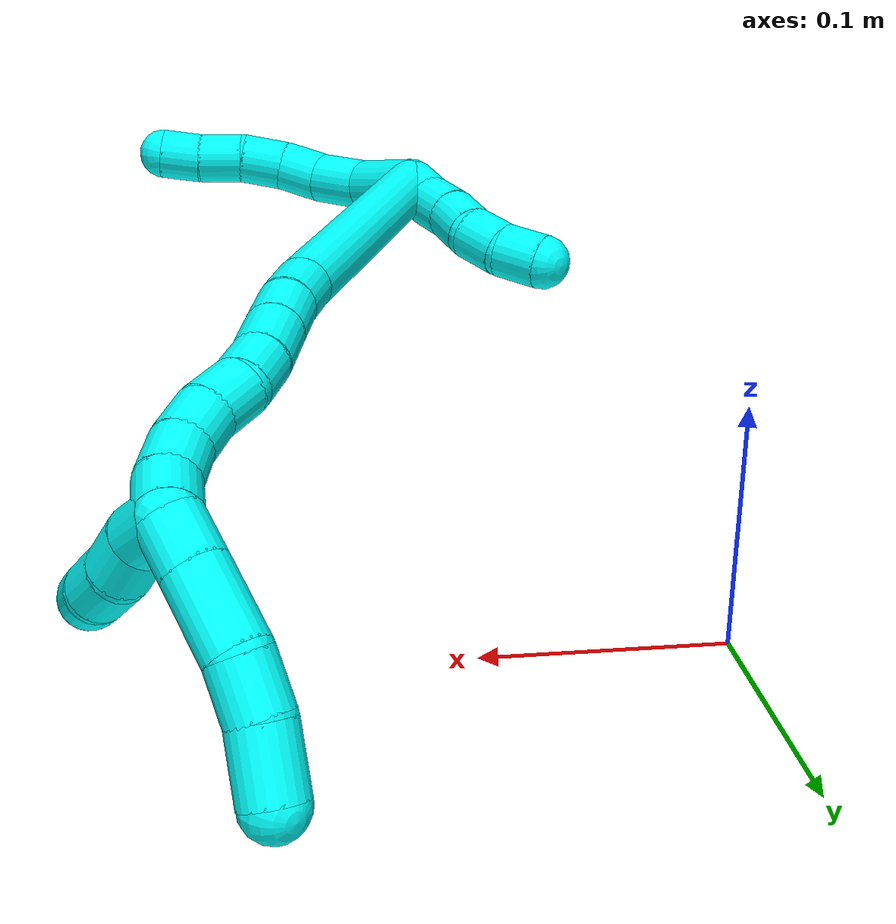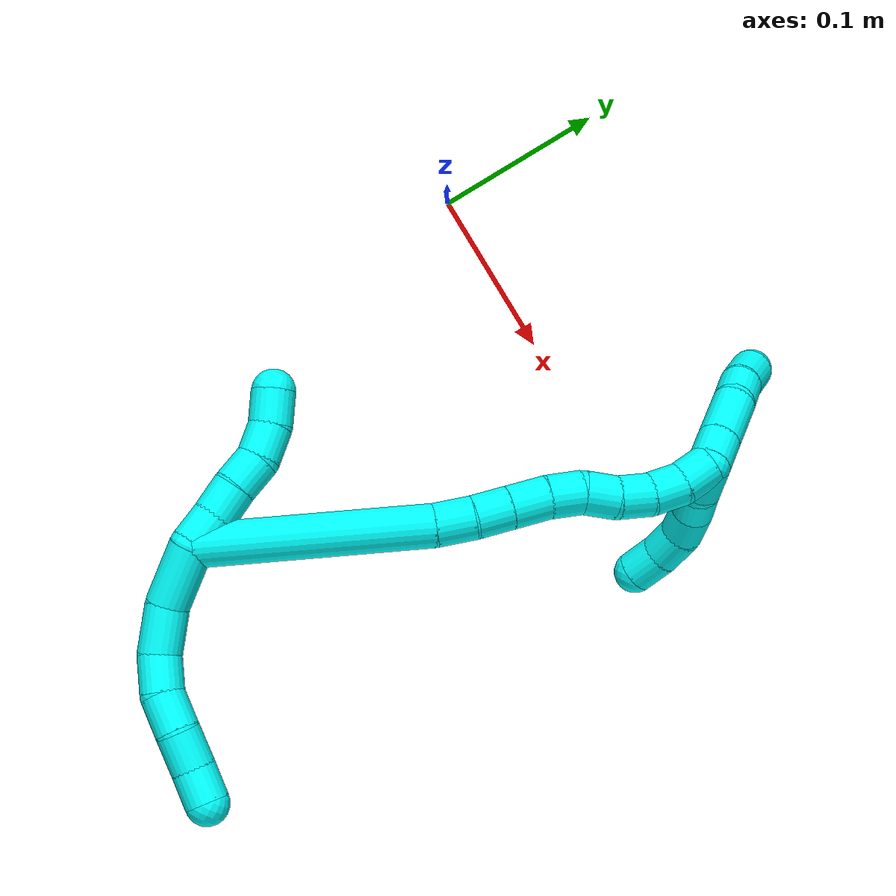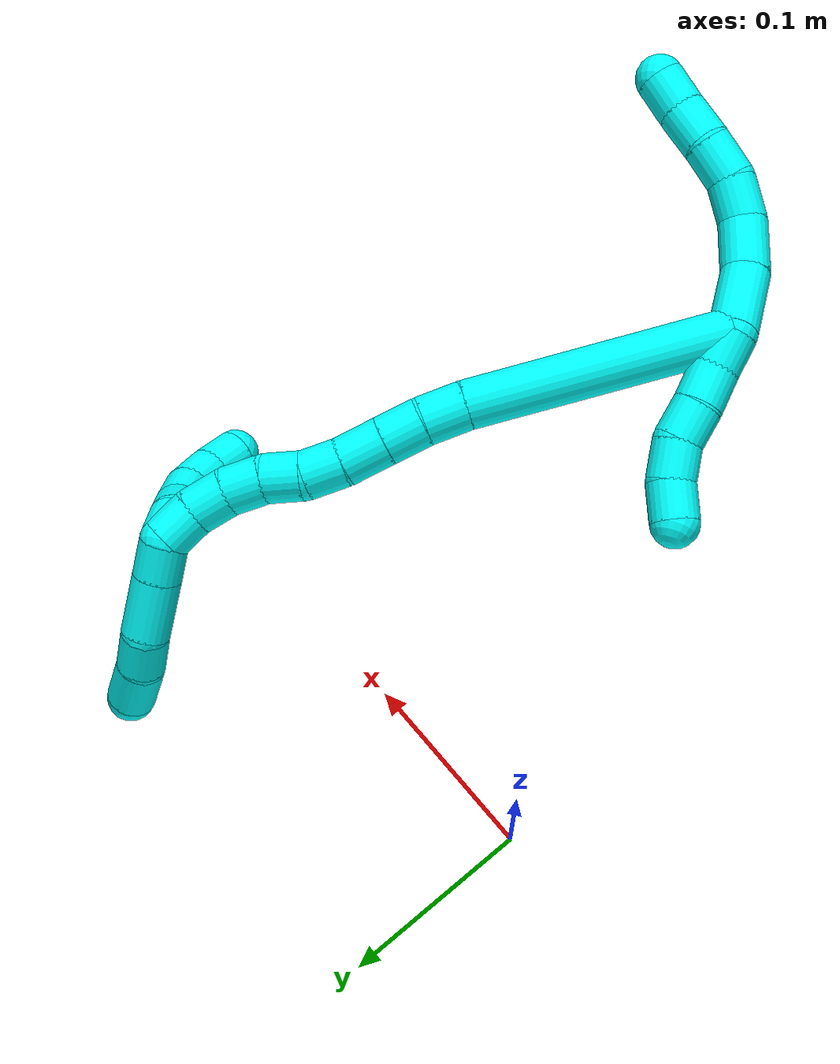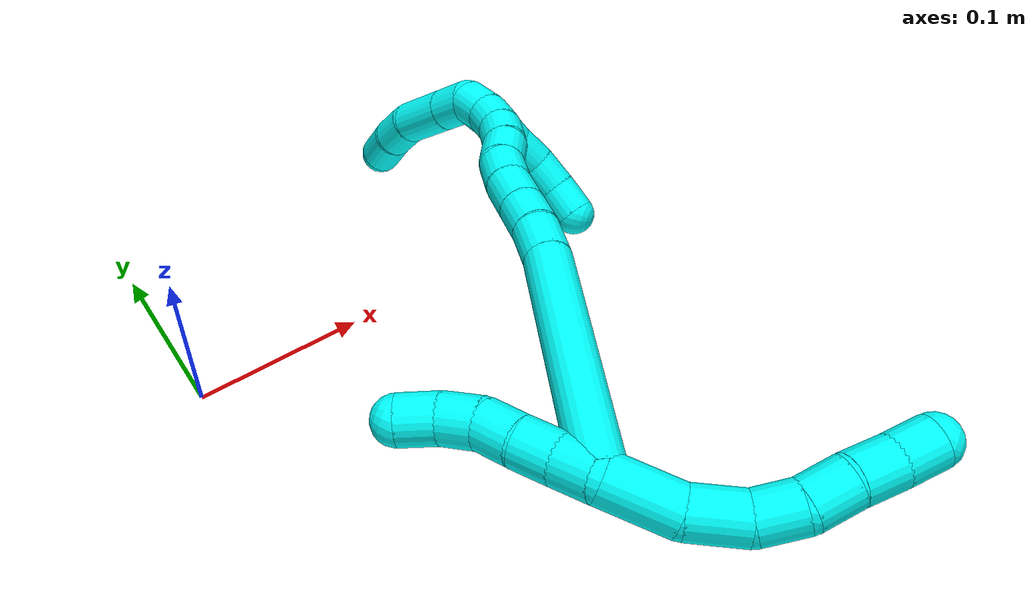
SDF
<sdf version="1.7">
 <world name="default">
  <model name="3">
   <static>0</static>
   <link name="3">
    <collision name="collision-cylinder-e_1_2_8">
     <pose>0.002812 0.000119 0.017757 -0.006686 0.157046 -0.000526</pose>
     <geometry><cylinder><radius>0.0125</radius><length>0.035956</length></cylinder></geometry>
     <surface>
      <friction><ode><mu>1.16</mu><mu2>1.16</mu2><slip1>0</slip1><slip2>0</slip2></ode></friction>
      <contact><ode><kp>1e+06</kp><kd>1</kd><max_vel>0</max_vel><min_depth>0.001</min_depth></ode></contact>
     </surface>
    </collision>
    <visual name="visual-cylinder-e_1_2_8">
     <pose>0.002812 0.000119 0.017757 -0.006686 0.157046 -0.000526</pose>
     <geometry><cylinder><radius>0.0125</radius><length>0.035956</length></cylinder></geometry>
     <material><ambient>0.003922 1 0.996078 1</ambient></material>
    </visual>
    <collision name="collision-cylinder-e_2_8_9">
     <pose>0.006608 0.004425 0.048792 -0.305448 0.070595 -0.010871</pose>
     <geometry><cylinder><radius>0.0125</radius><length>0.027917</length></cylinder></geometry>
     <surface>
      <friction><ode><mu>1.16</mu><mu2>1.16</mu2><slip1>0</slip1><slip2>0</slip2></ode></friction>
      <contact><ode><kp>1e+06</kp><kd>1</kd><max_vel>0</max_vel><min_depth>0.001</min_depth></ode></contact>
     </surface>
    </collision>
    <visual name="visual-cylinder-e_2_8_9">
     <pose>0.006608 0.004425 0.048792 -0.305448 0.070595 -0.010871</pose>
     <geometry><cylinder><radius>0.0125</radius><length>0.027917</length></cylinder></geometry>
     <material><ambient>0.003922 1 0.996078 1</ambient></material>
    </visual>
    <collision name="collision-cylinder-e_3_9_10">
     <pose>0.007096 0.014984 0.071002 -0.619796 -0.045229 0.014485</pose>
     <geometry><cylinder><radius>0.0125</radius><length>0.021964</length></cylinder></geometry>
     <surface>
      <friction><ode><mu>1.16</mu><mu2>1.16</mu2><slip1>0</slip1><slip2>0</slip2></ode></friction>
      <contact><ode><kp>1e+06</kp><kd>1</kd><max_vel>0</max_vel><min_depth>0.001</min_depth></ode></contact>
     </surface>
    </collision>
    <visual name="visual-cylinder-e_3_9_10">
     <pose>0.007096 0.014984 0.071002 -0.619796 -0.045229 0.014485</pose>
     <geometry><cylinder><radius>0.0125</radius><length>0.021964</length></cylinder></geometry>
     <material><ambient>0.003922 1 0.996078 1</ambient></material>
    </visual>
    <collision name="collision-cylinder-e_4_10_11">
     <pose>0.007579 0.029935 0.086789 -0.896455 0.088975 -0.042807</pose>
     <geometry><cylinder><radius>0.0125</radius><length>0.022051</length></cylinder></geometry>
     <surface>
      <friction><ode><mu>1.16</mu><mu2>1.16</mu2><slip1>0</slip1><slip2>0</slip2></ode></friction>
      <contact><ode><kp>1e+06</kp><kd>1</kd><max_vel>0</max_vel><min_depth>0.001</min_depth></ode></contact>
     </surface>
    </collision>
    <visual name="visual-cylinder-e_4_10_11">
     <pose>0.007579 0.029935 0.086789 -0.896455 0.088975 -0.042807</pose>
     <geometry><cylinder><radius>0.0125</radius><length>0.022051</length></cylinder></geometry>
     <material><ambient>0.003922 1 0.996078 1</ambient></material>
    </visual>
    <collision name="collision-cylinder-e_5_11_12">
     <pose>0.011474 0.046373 0.100775 -0.834056 0.268117 -0.119354</pose>
     <geometry><cylinder><radius>0.0125</radius><length>0.02201</length></cylinder></geometry>
     <surface>
      <friction><ode><mu>1.16</mu><mu2>1.16</mu2><slip1>0</slip1><slip2>0</slip2></ode></friction>
      <contact><ode><kp>1e+06</kp><kd>1</kd><max_vel>0</max_vel><min_depth>0.001</min_depth></ode></contact>
     </surface>
    </collision>
    <visual name="visual-cylinder-e_5_11_12">
     <pose>0.011474 0.046373 0.100775 -0.834056 0.268117 -0.119354</pose>
     <geometry><cylinder><radius>0.0125</radius><length>0.02201</length></cylinder></geometry>
     <material><ambient>0.003922 1 0.996078 1</ambient></material>
    </visual>
    <collision name="collision-cylinder-e_6_12_6">
     <pose>0.015846 0.061812 0.114343 -0.86663 0.145411 -0.067366</pose>
     <geometry><cylinder><radius>0.0125</radius><length>0.020102</length></cylinder></geometry>
     <surface>
      <friction><ode><mu>1.16</mu><mu2>1.16</mu2><slip1>0</slip1><slip2>0</slip2></ode></friction>
      <contact><ode><kp>1e+06</kp><kd>1</kd><max_vel>0</max_vel><min_depth>0.001</min_depth></ode></contact>
     </surface>
    </collision>
    <visual name="visual-cylinder-e_6_12_6">
     <pose>0.015846 0.061812 0.114343 -0.86663 0.145411 -0.067366</pose>
     <geometry><cylinder><radius>0.0125</radius><length>0.020102</length></cylinder></geometry>
     <material><ambient>0.003922 1 0.996078 1</ambient></material>
    </visual>
    <collision name="collision-cylinder-e_1_2_13">
     <pose>0.003039 0.000701 -0.009501 -3.06792 0.308784 -2.67655</pose>
     <geometry><cylinder><radius>0.0125</radius><length>0.02</length></cylinder></geometry>
     <surface>
      <friction><ode><mu>1.16</mu><mu2>1.16</mu2><slip1>0</slip1><slip2>0</slip2></ode></friction>
      <contact><ode><kp>1e+06</kp><kd>1</kd><max_vel>0</max_vel><min_depth>0.001</min_depth></ode></contact>
     </surface>
    </collision>
    <visual name="visual-cylinder-e_1_2_13">
     <pose>0.003039 0.000701 -0.009501 -3.06792 0.308784 -2.67655</pose>
     <geometry><cylinder><radius>0.0125</radius><length>0.02</length></cylinder></geometry>
     <material><ambient>0.003922 1 0.996078 1</ambient></material>
    </visual>
    <collision name="collision-cylinder-e_2_13_14">
     <pose>0.007986 0.002039 -0.028798 -3.0767 0.191977 -2.4913</pose>
     <geometry><cylinder><radius>0.0125</radius><length>0.02</length></cylinder></geometry>
     <surface>
      <friction><ode><mu>1.16</mu><mu2>1.16</mu2><slip1>0</slip1><slip2>0</slip2></ode></friction>
      <contact><ode><kp>1e+06</kp><kd>1</kd><max_vel>0</max_vel><min_depth>0.001</min_depth></ode></contact>
     </surface>
    </collision>
    <visual name="visual-cylinder-e_2_13_14">
     <pose>0.007986 0.002039 -0.028798 -3.0767 0.191977 -2.4913</pose>
     <geometry><cylinder><radius>0.0125</radius><length>0.02</length></cylinder></geometry>
     <material><ambient>0.003922 1 0.996078 1</ambient></material>
    </visual>
    <collision name="collision-cylinder-e_3_14_15">
     <pose>0.012894 0.003848 -0.048061 -3.01843 0.304662 -2.37777</pose>
     <geometry><cylinder><radius>0.0125</radius><length>0.02</length></cylinder></geometry>
     <surface>
      <friction><ode><mu>1.16</mu><mu2>1.16</mu2><slip1>0</slip1><slip2>0</slip2></ode></friction>
      <contact><ode><kp>1e+06</kp><kd>1</kd><max_vel>0</max_vel><min_depth>0.001</min_depth></ode></contact>
     </surface>
    </collision>
    <visual name="visual-cylinder-e_3_14_15">
     <pose>0.012894 0.003848 -0.048061 -3.01843 0.304662 -2.37777</pose>
     <geometry><cylinder><radius>0.0125</radius><length>0.02</length></cylinder></geometry>
     <material><ambient>0.003922 1 0.996078 1</ambient></material>
    </visual>
    <collision name="collision-cylinder-e_4_15_16">
     <pose>0.017876 0.002978 -0.067115 2.93176 0.199594 1.52045</pose>
     <geometry><cylinder><radius>0.0125</radius><length>0.02</length></cylinder></geometry>
     <surface>
      <friction><ode><mu>1.16</mu><mu2>1.16</mu2><slip1>0</slip1><slip2>0</slip2></ode></friction>
      <contact><ode><kp>1e+06</kp><kd>1</kd><max_vel>0</max_vel><min_depth>0.001</min_depth></ode></contact>
     </surface>
    </collision>
    <visual name="visual-cylinder-e_4_15_16">
     <pose>0.017876 0.002978 -0.067115 2.93176 0.199594 1.52045</pose>
     <geometry><cylinder><radius>0.0125</radius><length>0.02</length></cylinder></geometry>
     <material><ambient>0.003922 1 0.996078 1</ambient></material>
    </visual>
    <collision name="collision-cylinder-e_5_16_5">
     <pose>0.020109 -0.003166 -0.085817 2.7187 0.024973 0.116216</pose>
     <geometry><cylinder><radius>0.0125</radius><length>0.02</length></cylinder></geometry>
     <surface>
      <friction><ode><mu>1.16</mu><mu2>1.16</mu2><slip1>0</slip1><slip2>0</slip2></ode></friction>
      <contact><ode><kp>1e+06</kp><kd>1</kd><max_vel>0</max_vel><min_depth>0.001</min_depth></ode></contact>
     </surface>
    </collision>
    <visual name="visual-cylinder-e_5_16_5">
     <pose>0.020109 -0.003166 -0.085817 2.7187 0.024973 0.116216</pose>
     <geometry><cylinder><radius>0.0125</radius><length>0.02</length></cylinder></geometry>
     <material><ambient>0.003922 1 0.996078 1</ambient></material>
    </visual>
    <collision name="collision-cylinder-e_1_2_17">
     <pose>0.028333 0.049992 -0.03426 -2.1716 0.437307 -0.798076</pose>
     <geometry><cylinder><radius>0.0125</radius><length>0.133802</length></cylinder></geometry>
     <surface>
      <friction><ode><mu>1.16</mu><mu2>1.16</mu2><slip1>0</slip1><slip2>0</slip2></ode></friction>
      <contact><ode><kp>1e+06</kp><kd>1</kd><max_vel>0</max_vel><min_depth>0.001</min_depth></ode></contact>
     </surface>
    </collision>
    <visual name="visual-cylinder-e_1_2_17">
     <pose>0.028333 0.049992 -0.03426 -2.1716 0.437307 -0.798076</pose>
     <geometry><cylinder><radius>0.0125</radius><length>0.133802</length></cylinder></geometry>
     <material><ambient>0.003922 1 0.996078 1</ambient></material>
    </visual>
    <collision name="collision-cylinder-e_2_17_18">
     <pose>0.060976 0.107735 -0.075291 -2.28874 0.396703 -0.833073</pose>
     <geometry><cylinder><radius>0.0125</radius><length>0.022316</length></cylinder></geometry>
     <surface>
      <friction><ode><mu>1.16</mu><mu2>1.16</mu2><slip1>0</slip1><slip2>0</slip2></ode></friction>
      <contact><ode><kp>1e+06</kp><kd>1</kd><max_vel>0</max_vel><min_depth>0.001</min_depth></ode></contact>
     </surface>
    </collision>
    <visual name="visual-cylinder-e_2_17_18">
     <pose>0.060976 0.107735 -0.075291 -2.28874 0.396703 -0.833073</pose>
     <geometry><cylinder><radius>0.0125</radius><length>0.022316</length></cylinder></geometry>
     <material><ambient>0.003922 1 0.996078 1</ambient></material>
    </visual>
    <collision name="collision-cylinder-e_3_18_19">
     <pose>0.070139 0.121784 -0.088798 -2.38992 0.484229 -1.11843</pose>
     <geometry><cylinder><radius>0.0125</radius><length>0.020841</length></cylinder></geometry>
     <surface>
      <friction><ode><mu>1.16</mu><mu2>1.16</mu2><slip1>0</slip1><slip2>0</slip2></ode></friction>
      <contact><ode><kp>1e+06</kp><kd>1</kd><max_vel>0</max_vel><min_depth>0.001</min_depth></ode></contact>
     </surface>
    </collision>
    <visual name="visual-cylinder-e_3_18_19">
     <pose>0.070139 0.121784 -0.088798 -2.38992 0.484229 -1.11843</pose>
     <geometry><cylinder><radius>0.0125</radius><length>0.020841</length></cylinder></geometry>
     <material><ambient>0.003922 1 0.996078 1</ambient></material>
    </visual>
    <collision name="collision-cylinder-e_4_19_20">
     <pose>0.080457 0.134904 -0.10289 -2.39376 0.498988 -1.15188</pose>
     <geometry><cylinder><radius>0.0125</radius><length>0.022849</length></cylinder></geometry>
     <surface>
      <friction><ode><mu>1.16</mu><mu2>1.16</mu2><slip1>0</slip1><slip2>0</slip2></ode></friction>
      <contact><ode><kp>1e+06</kp><kd>1</kd><max_vel>0</max_vel><min_depth>0.001</min_depth></ode></contact>
     </surface>
    </collision>
    <visual name="visual-cylinder-e_4_19_20">
     <pose>0.080457 0.134904 -0.10289 -2.39376 0.498988 -1.15188</pose>
     <geometry><cylinder><radius>0.0125</radius><length>0.022849</length></cylinder></geometry>
     <material><ambient>0.003922 1 0.996078 1</ambient></material>
    </visual>
    <collision name="collision-cylinder-e_5_20_21">
     <pose>0.090695 0.148662 -0.115809 -2.24681 0.492478 -0.965002</pose>
     <geometry><cylinder><radius>0.0125</radius><length>0.020184</length></cylinder></geometry>
     <surface>
      <friction><ode><mu>1.16</mu><mu2>1.16</mu2><slip1>0</slip1><slip2>0</slip2></ode></friction>
      <contact><ode><kp>1e+06</kp><kd>1</kd><max_vel>0</max_vel><min_depth>0.001</min_depth></ode></contact>
     </surface>
    </collision>
    <visual name="visual-cylinder-e_5_20_21">
     <pose>0.090695 0.148662 -0.115809 -2.24681 0.492478 -0.965002</pose>
     <geometry><cylinder><radius>0.0125</radius><length>0.020184</length></cylinder></geometry>
     <material><ambient>0.003922 1 0.996078 1</ambient></material>
    </visual>
    <collision name="collision-cylinder-e_6_21_22">
     <pose>0.100891 0.163498 -0.124236 -1.91856 0.573272 -0.79588</pose>
     <geometry><cylinder><radius>0.0125</radius><length>0.020001</length></cylinder></geometry>
     <surface>
      <friction><ode><mu>1.16</mu><mu2>1.16</mu2><slip1>0</slip1><slip2>0</slip2></ode></friction>
      <contact><ode><kp>1e+06</kp><kd>1</kd><max_vel>0</max_vel><min_depth>0.001</min_depth></ode></contact>
     </surface>
    </collision>
    <visual name="visual-cylinder-e_6_21_22">
     <pose>0.100891 0.163498 -0.124236 -1.91856 0.573272 -0.79588</pose>
     <geometry><cylinder><radius>0.0125</radius><length>0.020001</length></cylinder></geometry>
     <material><ambient>0.003922 1 0.996078 1</ambient></material>
    </visual>
    <collision name="collision-cylinder-e_7_22_23">
     <pose>0.111939 0.178019 -0.132052 -2.21296 0.597222 -1.10217</pose>
     <geometry><cylinder><radius>0.0125</radius><length>0.020002</length></cylinder></geometry>
     <surface>
      <friction><ode><mu>1.16</mu><mu2>1.16</mu2><slip1>0</slip1><slip2>0</slip2></ode></friction>
      <contact><ode><kp>1e+06</kp><kd>1</kd><max_vel>0</max_vel><min_depth>0.001</min_depth></ode></contact>
     </surface>
    </collision>
    <visual name="visual-cylinder-e_7_22_23">
     <pose>0.111939 0.178019 -0.132052 -2.21296 0.597222 -1.10217</pose>
     <geometry><cylinder><radius>0.0125</radius><length>0.020002</length></cylinder></geometry>
     <material><ambient>0.003922 1 0.996078 1</ambient></material>
    </visual>
    <collision name="collision-cylinder-e_8_23_24">
     <pose>0.122602 0.190053 -0.143739 -2.46459 0.52809 -1.30978</pose>
     <geometry><cylinder><radius>0.0125</radius><length>0.020001</length></cylinder></geometry>
     <surface>
      <friction><ode><mu>1.16</mu><mu2>1.16</mu2><slip1>0</slip1><slip2>0</slip2></ode></friction>
      <contact><ode><kp>1e+06</kp><kd>1</kd><max_vel>0</max_vel><min_depth>0.001</min_depth></ode></contact>
     </surface>
    </collision>
    <visual name="visual-cylinder-e_8_23_24">
     <pose>0.122602 0.190053 -0.143739 -2.46459 0.52809 -1.30978</pose>
     <geometry><cylinder><radius>0.0125</radius><length>0.020001</length></cylinder></geometry>
     <material><ambient>0.003922 1 0.996078 1</ambient></material>
    </visual>
    <collision name="collision-cylinder-e_9_24_1">
     <pose>0.131422 0.199174 -0.158957 -2.72947 0.387634 -1.50792</pose>
     <geometry><cylinder><radius>0.0125</radius><length>0.020005</length></cylinder></geometry>
     <surface>
      <friction><ode><mu>1.16</mu><mu2>1.16</mu2><slip1>0</slip1><slip2>0</slip2></ode></friction>
      <contact><ode><kp>1e+06</kp><kd>1</kd><max_vel>0</max_vel><min_depth>0.001</min_depth></ode></contact>
     </surface>
    </collision>
    <visual name="visual-cylinder-e_9_24_1">
     <pose>0.131422 0.199174 -0.158957 -2.72947 0.387634 -1.50792</pose>
     <geometry><cylinder><radius>0.0125</radius><length>0.020005</length></cylinder></geometry>
     <material><ambient>0.003922 1 0.996078 1</ambient></material>
    </visual>
    <collision name="collision-cylinder-e_1_1_25">
     <pose>0.141331 0.2005 -0.175 2.83611 0.658145 2.29456</pose>
     <geometry><cylinder><radius>0.0125</radius><length>0.020036</length></cylinder></geometry>
     <surface>
      <friction><ode><mu>1.16</mu><mu2>1.16</mu2><slip1>0</slip1><slip2>0</slip2></ode></friction>
      <contact><ode><kp>1e+06</kp><kd>1</kd><max_vel>0</max_vel><min_depth>0.001</min_depth></ode></contact>
     </surface>
    </collision>
    <visual name="visual-cylinder-e_1_1_25">
     <pose>0.141331 0.2005 -0.175 2.83611 0.658145 2.29456</pose>
     <geometry><cylinder><radius>0.0125</radius><length>0.020036</length></cylinder></geometry>
     <material><ambient>0.003922 1 0.996078 1</ambient></material>
    </visual>
    <collision name="collision-cylinder-e_2_25_26">
     <pose>0.157333 0.194372 -0.194668 2.84169 0.661864 2.31299</pose>
     <geometry><cylinder><radius>0.0125</radius><length>0.032135</length></cylinder></geometry>
     <surface>
      <friction><ode><mu>1.16</mu><mu2>1.16</mu2><slip1>0</slip1><slip2>0</slip2></ode></friction>
      <contact><ode><kp>1e+06</kp><kd>1</kd><max_vel>0</max_vel><min_depth>0.001</min_depth></ode></contact>
     </surface>
    </collision>
    <visual name="visual-cylinder-e_2_25_26">
     <pose>0.157333 0.194372 -0.194668 2.84169 0.661864 2.31299</pose>
     <geometry><cylinder><radius>0.0125</radius><length>0.032135</length></cylinder></geometry>
     <material><ambient>0.003922 1 0.996078 1</ambient></material>
    </visual>
    <collision name="collision-cylinder-e_3_26_27">
     <pose>0.175667 0.187586 -0.212755 2.67104 0.900456 2.22077</pose>
     <geometry><cylinder><radius>0.0125</radius><length>0.021591</length></cylinder></geometry>
     <surface>
      <friction><ode><mu>1.16</mu><mu2>1.16</mu2><slip1>0</slip1><slip2>0</slip2></ode></friction>
      <contact><ode><kp>1e+06</kp><kd>1</kd><max_vel>0</max_vel><min_depth>0.001</min_depth></ode></contact>
     </surface>
    </collision>
    <visual name="visual-cylinder-e_3_26_27">
     <pose>0.175667 0.187586 -0.212755 2.67104 0.900456 2.22077</pose>
     <geometry><cylinder><radius>0.0125</radius><length>0.021591</length></cylinder></geometry>
     <material><ambient>0.003922 1 0.996078 1</ambient></material>
    </visual>
    <collision name="collision-cylinder-e_4_27_4">
     <pose>0.195636 0.182291 -0.224611 2.77533 1.07022 2.53595</pose>
     <geometry><cylinder><radius>0.0125</radius><length>0.026238</length></cylinder></geometry>
     <surface>
      <friction><ode><mu>1.16</mu><mu2>1.16</mu2><slip1>0</slip1><slip2>0</slip2></ode></friction>
      <contact><ode><kp>1e+06</kp><kd>1</kd><max_vel>0</max_vel><min_depth>0.001</min_depth></ode></contact>
     </surface>
    </collision>
    <visual name="visual-cylinder-e_4_27_4">
     <pose>0.195636 0.182291 -0.224611 2.77533 1.07022 2.53595</pose>
     <geometry><cylinder><radius>0.0125</radius><length>0.026238</length></cylinder></geometry>
     <material><ambient>0.003922 1 0.996078 1</ambient></material>
    </visual>
    <collision name="collision-cylinder-e_1_1_28">
     <pose>0.141187 0.201962 -0.159483 0.115296 0.641507 0.038342</pose>
     <geometry><cylinder><radius>0.0125</radius><length>0.02</length></cylinder></geometry>
     <surface>
      <friction><ode><mu>1.16</mu><mu2>1.16</mu2><slip1>0</slip1><slip2>0</slip2></ode></friction>
      <contact><ode><kp>1e+06</kp><kd>1</kd><max_vel>0</max_vel><min_depth>0.001</min_depth></ode></contact>
     </surface>
    </collision>
    <visual name="visual-cylinder-e_1_1_28">
     <pose>0.141187 0.201962 -0.159483 0.115296 0.641507 0.038342</pose>
     <geometry><cylinder><radius>0.0125</radius><length>0.02</length></cylinder></geometry>
     <material><ambient>0.003922 1 0.996078 1</ambient></material>
    </visual>
    <collision name="collision-cylinder-e_2_28_29">
     <pose>0.155173 0.199801 -0.145656 0.208142 0.927592 0.104392</pose>
     <geometry><cylinder><radius>0.0125</radius><length>0.02</length></cylinder></geometry>
     <surface>
      <friction><ode><mu>1.16</mu><mu2>1.16</mu2><slip1>0</slip1><slip2>0</slip2></ode></friction>
      <contact><ode><kp>1e+06</kp><kd>1</kd><max_vel>0</max_vel><min_depth>0.001</min_depth></ode></contact>
     </surface>
    </collision>
    <visual name="visual-cylinder-e_2_28_29">
     <pose>0.155173 0.199801 -0.145656 0.208142 0.927592 0.104392</pose>
     <geometry><cylinder><radius>0.0125</radius><length>0.02</length></cylinder></geometry>
     <material><ambient>0.003922 1 0.996078 1</ambient></material>
    </visual>
    <collision name="collision-cylinder-e_3_29_30">
     <pose>0.169541 0.196971 -0.132242 0.207732 0.690094 0.074899</pose>
     <geometry><cylinder><radius>0.0125</radius><length>0.02</length></cylinder></geometry>
     <surface>
      <friction><ode><mu>1.16</mu><mu2>1.16</mu2><slip1>0</slip1><slip2>0</slip2></ode></friction>
      <contact><ode><kp>1e+06</kp><kd>1</kd><max_vel>0</max_vel><min_depth>0.001</min_depth></ode></contact>
     </surface>
    </collision>
    <visual name="visual-cylinder-e_3_29_30">
     <pose>0.169541 0.196971 -0.132242 0.207732 0.690094 0.074899</pose>
     <geometry><cylinder><radius>0.0125</radius><length>0.02</length></cylinder></geometry>
     <material><ambient>0.003922 1 0.996078 1</ambient></material>
    </visual>
    <collision name="collision-cylinder-e_4_30_31">
     <pose>0.180137 0.191402 -0.116555 0.4546 0.436813 0.102581</pose>
     <geometry><cylinder><radius>0.0125</radius><length>0.02</length></cylinder></geometry>
     <surface>
      <friction><ode><mu>1.16</mu><mu2>1.16</mu2><slip1>0</slip1><slip2>0</slip2></ode></friction>
      <contact><ode><kp>1e+06</kp><kd>1</kd><max_vel>0</max_vel><min_depth>0.001</min_depth></ode></contact>
     </surface>
    </collision>
    <visual name="visual-cylinder-e_4_30_31">
     <pose>0.180137 0.191402 -0.116555 0.4546 0.436813 0.102581</pose>
     <geometry><cylinder><radius>0.0125</radius><length>0.02</length></cylinder></geometry>
     <material><ambient>0.003922 1 0.996078 1</ambient></material>
    </visual>
    <collision name="collision-cylinder-e_5_31_3">
     <pose>0.186772 0.182345 -0.100141 0.550493 0.242831 0.068891</pose>
     <geometry><cylinder><radius>0.0125</radius><length>0.02</length></cylinder></geometry>
     <surface>
      <friction><ode><mu>1.16</mu><mu2>1.16</mu2><slip1>0</slip1><slip2>0</slip2></ode></friction>
      <contact><ode><kp>1e+06</kp><kd>1</kd><max_vel>0</max_vel><min_depth>0.001</min_depth></ode></contact>
     </surface>
    </collision>
    <visual name="visual-cylinder-e_5_31_3">
     <pose>0.186772 0.182345 -0.100141 0.550493 0.242831 0.068891</pose>
     <geometry><cylinder><radius>0.0125</radius><length>0.02</length></cylinder></geometry>
     <material><ambient>0.003922 1 0.996078 1</ambient></material>
    </visual>
    <collision name="collision-sphere-3">
     <pose>0.189177 0.177268 -0.091869 0 -0 0</pose>
     <geometry><sphere><radius>0.0125</radius></sphere></geometry>
     <surface>
      <friction><ode><mu>1.16</mu><mu2>1.16</mu2><slip1>0</slip1><slip2>0</slip2></ode></friction>
      <contact><ode><kp>1e+06</kp><kd>1</kd><max_vel>0</max_vel><min_depth>0.001</min_depth></ode></contact>
     </surface>
    </collision>
    <visual name="visual-sphere-3">
     <pose>0.189177 0.177268 -0.091869 0 -0 0</pose>
     <geometry><sphere><radius>0.0125</radius></sphere></geometry>
     <material><ambient>0.003922 1 0.996078 1</ambient></material>
    </visual>
    <collision name="collision-sphere-31">
     <pose>0.184368 0.187423 -0.108414 0 -0 0</pose>
     <geometry><sphere><radius>0.0125</radius></sphere></geometry>
     <surface>
      <friction><ode><mu>1.16</mu><mu2>1.16</mu2><slip1>0</slip1><slip2>0</slip2></ode></friction>
      <contact><ode><kp>1e+06</kp><kd>1</kd><max_vel>0</max_vel><min_depth>0.001</min_depth></ode></contact>
     </surface>
    </collision>
    <visual name="visual-sphere-31">
     <pose>0.184368 0.187423 -0.108414 0 -0 0</pose>
     <geometry><sphere><radius>0.0125</radius></sphere></geometry>
     <material><ambient>0.003922 1 0.996078 1</ambient></material>
    </visual>
    <collision name="collision-sphere-30">
     <pose>0.175907 0.19538 -0.124696 0 -0 0</pose>
     <geometry><sphere><radius>0.0125</radius></sphere></geometry>
     <surface>
      <friction><ode><mu>1.16</mu><mu2>1.16</mu2><slip1>0</slip1><slip2>0</slip2></ode></friction>
      <contact><ode><kp>1e+06</kp><kd>1</kd><max_vel>0</max_vel><min_depth>0.001</min_depth></ode></contact>
     </surface>
    </collision>
    <visual name="visual-sphere-30">
     <pose>0.175907 0.19538 -0.124696 0 -0 0</pose>
     <geometry><sphere><radius>0.0125</radius></sphere></geometry>
     <material><ambient>0.003922 1 0.996078 1</ambient></material>
    </visual>
    <collision name="collision-sphere-29">
     <pose>0.163175 0.198561 -0.139788 0 -0 0</pose>
     <geometry><sphere><radius>0.0125</radius></sphere></geometry>
     <surface>
      <friction><ode><mu>1.16</mu><mu2>1.16</mu2><slip1>0</slip1><slip2>0</slip2></ode></friction>
      <contact><ode><kp>1e+06</kp><kd>1</kd><max_vel>0</max_vel><min_depth>0.001</min_depth></ode></contact>
     </surface>
    </collision>
    <visual name="visual-sphere-29">
     <pose>0.163175 0.198561 -0.139788 0 -0 0</pose>
     <geometry><sphere><radius>0.0125</radius></sphere></geometry>
     <material><ambient>0.003922 1 0.996078 1</ambient></material>
    </visual>
    <collision name="collision-sphere-28">
     <pose>0.147171 0.20104 -0.151524 0 -0 0</pose>
     <geometry><sphere><radius>0.0125</radius></sphere></geometry>
     <surface>
      <friction><ode><mu>1.16</mu><mu2>1.16</mu2><slip1>0</slip1><slip2>0</slip2></ode></friction>
      <contact><ode><kp>1e+06</kp><kd>1</kd><max_vel>0</max_vel><min_depth>0.001</min_depth></ode></contact>
     </surface>
    </collision>
    <visual name="visual-sphere-28">
     <pose>0.147171 0.20104 -0.151524 0 -0 0</pose>
     <geometry><sphere><radius>0.0125</radius></sphere></geometry>
     <material><ambient>0.003922 1 0.996078 1</ambient></material>
    </visual>
    <collision name="collision-sphere-4">
     <pose>0.207146 0.180036 -0.23049 0 -0 0</pose>
     <geometry><sphere><radius>0.0125</radius></sphere></geometry>
     <surface>
      <friction><ode><mu>1.16</mu><mu2>1.16</mu2><slip1>0</slip1><slip2>0</slip2></ode></friction>
      <contact><ode><kp>1e+06</kp><kd>1</kd><max_vel>0</max_vel><min_depth>0.001</min_depth></ode></contact>
     </surface>
    </collision>
    <visual name="visual-sphere-4">
     <pose>0.207146 0.180036 -0.23049 0 -0 0</pose>
     <geometry><sphere><radius>0.0125</radius></sphere></geometry>
     <material><ambient>0.003922 1 0.996078 1</ambient></material>
    </visual>
    <collision name="collision-sphere-27">
     <pose>0.184127 0.184546 -0.218733 0 -0 0</pose>
     <geometry><sphere><radius>0.0125</radius></sphere></geometry>
     <surface>
      <friction><ode><mu>1.16</mu><mu2>1.16</mu2><slip1>0</slip1><slip2>0</slip2></ode></friction>
      <contact><ode><kp>1e+06</kp><kd>1</kd><max_vel>0</max_vel><min_depth>0.001</min_depth></ode></contact>
     </surface>
    </collision>
    <visual name="visual-sphere-27">
     <pose>0.184127 0.184546 -0.218733 0 -0 0</pose>
     <geometry><sphere><radius>0.0125</radius></sphere></geometry>
     <material><ambient>0.003922 1 0.996078 1</ambient></material>
    </visual>
    <collision name="collision-sphere-26">
     <pose>0.167208 0.190627 -0.206777 0 -0 0</pose>
     <geometry><sphere><radius>0.0125</radius></sphere></geometry>
     <surface>
      <friction><ode><mu>1.16</mu><mu2>1.16</mu2><slip1>0</slip1><slip2>0</slip2></ode></friction>
      <contact><ode><kp>1e+06</kp><kd>1</kd><max_vel>0</max_vel><min_depth>0.001</min_depth></ode></contact>
     </surface>
    </collision>
    <visual name="visual-sphere-26">
     <pose>0.167208 0.190627 -0.206777 0 -0 0</pose>
     <geometry><sphere><radius>0.0125</radius></sphere></geometry>
     <material><ambient>0.003922 1 0.996078 1</ambient></material>
    </visual>
    <collision name="collision-sphere-25">
     <pose>0.147458 0.198116 -0.182559 0 -0 0</pose>
     <geometry><sphere><radius>0.0125</radius></sphere></geometry>
     <surface>
      <friction><ode><mu>1.16</mu><mu2>1.16</mu2><slip1>0</slip1><slip2>0</slip2></ode></friction>
      <contact><ode><kp>1e+06</kp><kd>1</kd><max_vel>0</max_vel><min_depth>0.001</min_depth></ode></contact>
     </surface>
    </collision>
    <visual name="visual-sphere-25">
     <pose>0.147458 0.198116 -0.182559 0 -0 0</pose>
     <geometry><sphere><radius>0.0125</radius></sphere></geometry>
     <material><ambient>0.003922 1 0.996078 1</ambient></material>
    </visual>
    <collision name="collision-sphere-1">
     <pose>0.135203 0.202883 -0.167442 0 -0 0</pose>
     <geometry><sphere><radius>0.0125</radius></sphere></geometry>
     <surface>
      <friction><ode><mu>1.16</mu><mu2>1.16</mu2><slip1>0</slip1><slip2>0</slip2></ode></friction>
      <contact><ode><kp>1e+06</kp><kd>1</kd><max_vel>0</max_vel><min_depth>0.001</min_depth></ode></contact>
     </surface>
    </collision>
    <visual name="visual-sphere-1">
     <pose>0.135203 0.202883 -0.167442 0 -0 0</pose>
     <geometry><sphere><radius>0.0125</radius></sphere></geometry>
     <material><ambient>0.003922 1 0.996078 1</ambient></material>
    </visual>
    <collision name="collision-sphere-24">
     <pose>0.127641 0.195465 -0.150472 0 -0 0</pose>
     <geometry><sphere><radius>0.0125</radius></sphere></geometry>
     <surface>
      <friction><ode><mu>1.16</mu><mu2>1.16</mu2><slip1>0</slip1><slip2>0</slip2></ode></friction>
      <contact><ode><kp>1e+06</kp><kd>1</kd><max_vel>0</max_vel><min_depth>0.001</min_depth></ode></contact>
     </surface>
    </collision>
    <visual name="visual-sphere-24">
     <pose>0.127641 0.195465 -0.150472 0 -0 0</pose>
     <geometry><sphere><radius>0.0125</radius></sphere></geometry>
     <material><ambient>0.003922 1 0.996078 1</ambient></material>
    </visual>
    <collision name="collision-sphere-23">
     <pose>0.117563 0.184642 -0.137005 0 -0 0</pose>
     <geometry><sphere><radius>0.0125</radius></sphere></geometry>
     <surface>
      <friction><ode><mu>1.16</mu><mu2>1.16</mu2><slip1>0</slip1><slip2>0</slip2></ode></friction>
      <contact><ode><kp>1e+06</kp><kd>1</kd><max_vel>0</max_vel><min_depth>0.001</min_depth></ode></contact>
     </surface>
    </collision>
    <visual name="visual-sphere-23">
     <pose>0.117563 0.184642 -0.137005 0 -0 0</pose>
     <geometry><sphere><radius>0.0125</radius></sphere></geometry>
     <material><ambient>0.003922 1 0.996078 1</ambient></material>
    </visual>
    <collision name="collision-sphere-22">
     <pose>0.106315 0.171397 -0.127099 0 -0 0</pose>
     <geometry><sphere><radius>0.0125</radius></sphere></geometry>
     <surface>
      <friction><ode><mu>1.16</mu><mu2>1.16</mu2><slip1>0</slip1><slip2>0</slip2></ode></friction>
      <contact><ode><kp>1e+06</kp><kd>1</kd><max_vel>0</max_vel><min_depth>0.001</min_depth></ode></contact>
     </surface>
    </collision>
    <visual name="visual-sphere-22">
     <pose>0.106315 0.171397 -0.127099 0 -0 0</pose>
     <geometry><sphere><radius>0.0125</radius></sphere></geometry>
     <material><ambient>0.003922 1 0.996078 1</ambient></material>
    </visual>
    <collision name="collision-sphere-21">
     <pose>0.095467 0.155599 -0.121373 0 -0 0</pose>
     <geometry><sphere><radius>0.0125</radius></sphere></geometry>
     <surface>
      <friction><ode><mu>1.16</mu><mu2>1.16</mu2><slip1>0</slip1><slip2>0</slip2></ode></friction>
      <contact><ode><kp>1e+06</kp><kd>1</kd><max_vel>0</max_vel><min_depth>0.001</min_depth></ode></contact>
     </surface>
    </collision>
    <visual name="visual-sphere-21">
     <pose>0.095467 0.155599 -0.121373 0 -0 0</pose>
     <geometry><sphere><radius>0.0125</radius></sphere></geometry>
     <material><ambient>0.003922 1 0.996078 1</ambient></material>
    </visual>
    <collision name="collision-sphere-12">
     <pose>0.01439 0.054232 0.107905 0 -0 0</pose>
     <geometry><sphere><radius>0.0125</radius></sphere></geometry>
     <surface>
      <friction><ode><mu>1.16</mu><mu2>1.16</mu2><slip1>0</slip1><slip2>0</slip2></ode></friction>
      <contact><ode><kp>1e+06</kp><kd>1</kd><max_vel>0</max_vel><min_depth>0.001</min_depth></ode></contact>
     </surface>
    </collision>
    <visual name="visual-sphere-12">
     <pose>0.01439 0.054232 0.107905 0 -0 0</pose>
     <geometry><sphere><radius>0.0125</radius></sphere></geometry>
     <material><ambient>0.003922 1 0.996078 1</ambient></material>
    </visual>
    <collision name="collision-sphere-11">
     <pose>0.008559 0.038513 0.093646 0 -0 0</pose>
     <geometry><sphere><radius>0.0125</radius></sphere></geometry>
     <surface>
      <friction><ode><mu>1.16</mu><mu2>1.16</mu2><slip1>0</slip1><slip2>0</slip2></ode></friction>
      <contact><ode><kp>1e+06</kp><kd>1</kd><max_vel>0</max_vel><min_depth>0.001</min_depth></ode></contact>
     </surface>
    </collision>
    <visual name="visual-sphere-11">
     <pose>0.008559 0.038513 0.093646 0 -0 0</pose>
     <geometry><sphere><radius>0.0125</radius></sphere></geometry>
     <material><ambient>0.003922 1 0.996078 1</ambient></material>
    </visual>
    <collision name="collision-sphere-10">
     <pose>0.0066 0.021357 0.079932 0 -0 0</pose>
     <geometry><sphere><radius>0.0125</radius></sphere></geometry>
     <surface>
      <friction><ode><mu>1.16</mu><mu2>1.16</mu2><slip1>0</slip1><slip2>0</slip2></ode></friction>
      <contact><ode><kp>1e+06</kp><kd>1</kd><max_vel>0</max_vel><min_depth>0.001</min_depth></ode></contact>
     </surface>
    </collision>
    <visual name="visual-sphere-10">
     <pose>0.0066 0.021357 0.079932 0 -0 0</pose>
     <geometry><sphere><radius>0.0125</radius></sphere></geometry>
     <material><ambient>0.003922 1 0.996078 1</ambient></material>
    </visual>
    <collision name="collision-sphere-9">
     <pose>0.007593 0.008612 0.062072 0 -0 0</pose>
     <geometry><sphere><radius>0.0125</radius></sphere></geometry>
     <surface>
      <friction><ode><mu>1.16</mu><mu2>1.16</mu2><slip1>0</slip1><slip2>0</slip2></ode></friction>
      <contact><ode><kp>1e+06</kp><kd>1</kd><max_vel>0</max_vel><min_depth>0.001</min_depth></ode></contact>
     </surface>
    </collision>
    <visual name="visual-sphere-9">
     <pose>0.007593 0.008612 0.062072 0 -0 0</pose>
     <geometry><sphere><radius>0.0125</radius></sphere></geometry>
     <material><ambient>0.003922 1 0.996078 1</ambient></material>
    </visual>
    <collision name="collision-sphere-2">
     <geometry><sphere><radius>0.0125</radius></sphere></geometry>
     <surface>
      <friction><ode><mu>1.16</mu><mu2>1.16</mu2><slip1>0</slip1><slip2>0</slip2></ode></friction>
      <contact><ode><kp>1e+06</kp><kd>1</kd><max_vel>0</max_vel><min_depth>0.001</min_depth></ode></contact>
     </surface>
    </collision>
    <visual name="visual-sphere-2">
     <geometry><sphere><radius>0.0125</radius></sphere></geometry>
     <material><ambient>0.003922 1 0.996078 1</ambient></material>
    </visual>
    <collision name="collision-sphere-19">
     <pose>0.07499 0.128082 -0.095536 0 -0 0</pose>
     <geometry><sphere><radius>0.0125</radius></sphere></geometry>
     <surface>
      <friction><ode><mu>1.16</mu><mu2>1.16</mu2><slip1>0</slip1><slip2>0</slip2></ode></friction>
      <contact><ode><kp>1e+06</kp><kd>1</kd><max_vel>0</max_vel><min_depth>0.001</min_depth></ode></contact>
     </surface>
    </collision>
    <visual name="visual-sphere-19">
     <pose>0.07499 0.128082 -0.095536 0 -0 0</pose>
     <geometry><sphere><radius>0.0125</radius></sphere></geometry>
     <material><ambient>0.003922 1 0.996078 1</ambient></material>
    </visual>
    <collision name="collision-sphere-8">
     <pose>0.005624 0.000237 0.035513 0 -0 0</pose>
     <geometry><sphere><radius>0.0125</radius></sphere></geometry>
     <surface>
      <friction><ode><mu>1.16</mu><mu2>1.16</mu2><slip1>0</slip1><slip2>0</slip2></ode></friction>
      <contact><ode><kp>1e+06</kp><kd>1</kd><max_vel>0</max_vel><min_depth>0.001</min_depth></ode></contact>
     </surface>
    </collision>
    <visual name="visual-sphere-8">
     <pose>0.005624 0.000237 0.035513 0 -0 0</pose>
     <geometry><sphere><radius>0.0125</radius></sphere></geometry>
     <material><ambient>0.003922 1 0.996078 1</ambient></material>
    </visual>
    <collision name="collision-sphere-6">
     <pose>0.017303 0.069391 0.120782 0 -0 0</pose>
     <geometry><sphere><radius>0.0125</radius></sphere></geometry>
     <surface>
      <friction><ode><mu>1.16</mu><mu2>1.16</mu2><slip1>0</slip1><slip2>0</slip2></ode></friction>
      <contact><ode><kp>1e+06</kp><kd>1</kd><max_vel>0</max_vel><min_depth>0.001</min_depth></ode></contact>
     </surface>
    </collision>
    <visual name="visual-sphere-6">
     <pose>0.017303 0.069391 0.120782 0 -0 0</pose>
     <geometry><sphere><radius>0.0125</radius></sphere></geometry>
     <material><ambient>0.003922 1 0.996078 1</ambient></material>
    </visual>
    <collision name="collision-sphere-13">
     <pose>0.006078 0.001403 -0.019002 0 -0 0</pose>
     <geometry><sphere><radius>0.0125</radius></sphere></geometry>
     <surface>
      <friction><ode><mu>1.16</mu><mu2>1.16</mu2><slip1>0</slip1><slip2>0</slip2></ode></friction>
      <contact><ode><kp>1e+06</kp><kd>1</kd><max_vel>0</max_vel><min_depth>0.001</min_depth></ode></contact>
     </surface>
    </collision>
    <visual name="visual-sphere-13">
     <pose>0.006078 0.001403 -0.019002 0 -0 0</pose>
     <geometry><sphere><radius>0.0125</radius></sphere></geometry>
     <material><ambient>0.003922 1 0.996078 1</ambient></material>
    </visual>
    <collision name="collision-sphere-14">
     <pose>0.009894 0.002676 -0.038594 0 -0 0</pose>
     <geometry><sphere><radius>0.0125</radius></sphere></geometry>
     <surface>
      <friction><ode><mu>1.16</mu><mu2>1.16</mu2><slip1>0</slip1><slip2>0</slip2></ode></friction>
      <contact><ode><kp>1e+06</kp><kd>1</kd><max_vel>0</max_vel><min_depth>0.001</min_depth></ode></contact>
     </surface>
    </collision>
    <visual name="visual-sphere-14">
     <pose>0.009894 0.002676 -0.038594 0 -0 0</pose>
     <geometry><sphere><radius>0.0125</radius></sphere></geometry>
     <material><ambient>0.003922 1 0.996078 1</ambient></material>
    </visual>
    <collision name="collision-sphere-15">
     <pose>0.015893 0.00502 -0.057528 0 -0 0</pose>
     <geometry><sphere><radius>0.0125</radius></sphere></geometry>
     <surface>
      <friction><ode><mu>1.16</mu><mu2>1.16</mu2><slip1>0</slip1><slip2>0</slip2></ode></friction>
      <contact><ode><kp>1e+06</kp><kd>1</kd><max_vel>0</max_vel><min_depth>0.001</min_depth></ode></contact>
     </surface>
    </collision>
    <visual name="visual-sphere-15">
     <pose>0.015893 0.00502 -0.057528 0 -0 0</pose>
     <geometry><sphere><radius>0.0125</radius></sphere></geometry>
     <material><ambient>0.003922 1 0.996078 1</ambient></material>
    </visual>
    <collision name="collision-sphere-16">
     <pose>0.019859 0.000936 -0.076701 0 -0 0</pose>
     <geometry><sphere><radius>0.0125</radius></sphere></geometry>
     <surface>
      <friction><ode><mu>1.16</mu><mu2>1.16</mu2><slip1>0</slip1><slip2>0</slip2></ode></friction>
      <contact><ode><kp>1e+06</kp><kd>1</kd><max_vel>0</max_vel><min_depth>0.001</min_depth></ode></contact>
     </surface>
    </collision>
    <visual name="visual-sphere-16">
     <pose>0.019859 0.000936 -0.076701 0 -0 0</pose>
     <geometry><sphere><radius>0.0125</radius></sphere></geometry>
     <material><ambient>0.003922 1 0.996078 1</ambient></material>
    </visual>
    <collision name="collision-sphere-5">
     <pose>0.020358 -0.007269 -0.094934 0 -0 0</pose>
     <geometry><sphere><radius>0.0125</radius></sphere></geometry>
     <surface>
      <friction><ode><mu>1.16</mu><mu2>1.16</mu2><slip1>0</slip1><slip2>0</slip2></ode></friction>
      <contact><ode><kp>1e+06</kp><kd>1</kd><max_vel>0</max_vel><min_depth>0.001</min_depth></ode></contact>
     </surface>
    </collision>
    <visual name="visual-sphere-5">
     <pose>0.020358 -0.007269 -0.094934 0 -0 0</pose>
     <geometry><sphere><radius>0.0125</radius></sphere></geometry>
     <material><ambient>0.003922 1 0.996078 1</ambient></material>
    </visual>
    <collision name="collision-sphere-17">
     <pose>0.056665 0.099984 -0.068521 0 -0 0</pose>
     <geometry><sphere><radius>0.0125</radius></sphere></geometry>
     <surface>
      <friction><ode><mu>1.16</mu><mu2>1.16</mu2><slip1>0</slip1><slip2>0</slip2></ode></friction>
      <contact><ode><kp>1e+06</kp><kd>1</kd><max_vel>0</max_vel><min_depth>0.001</min_depth></ode></contact>
     </surface>
    </collision>
    <visual name="visual-sphere-17">
     <pose>0.056665 0.099984 -0.068521 0 -0 0</pose>
     <geometry><sphere><radius>0.0125</radius></sphere></geometry>
     <material><ambient>0.003922 1 0.996078 1</ambient></material>
    </visual>
    <collision name="collision-sphere-18">
     <pose>0.065287 0.115486 -0.082061 0 -0 0</pose>
     <geometry><sphere><radius>0.0125</radius></sphere></geometry>
     <surface>
      <friction><ode><mu>1.16</mu><mu2>1.16</mu2><slip1>0</slip1><slip2>0</slip2></ode></friction>
      <contact><ode><kp>1e+06</kp><kd>1</kd><max_vel>0</max_vel><min_depth>0.001</min_depth></ode></contact>
     </surface>
    </collision>
    <visual name="visual-sphere-18">
     <pose>0.065287 0.115486 -0.082061 0 -0 0</pose>
     <geometry><sphere><radius>0.0125</radius></sphere></geometry>
     <material><ambient>0.003922 1 0.996078 1</ambient></material>
    </visual>
    <collision name="collision-sphere-20">
     <pose>0.085923 0.141725 -0.110245 0 -0 0</pose>
     <geometry><sphere><radius>0.0125</radius></sphere></geometry>
     <surface>
      <friction><ode><mu>1.16</mu><mu2>1.16</mu2><slip1>0</slip1><slip2>0</slip2></ode></friction>
      <contact><ode><kp>1e+06</kp><kd>1</kd><max_vel>0</max_vel><min_depth>0.001</min_depth></ode></contact>
     </surface>
    </collision>
    <visual name="visual-sphere-20">
     <pose>0.085923 0.141725 -0.110245 0 -0 0</pose>
     <geometry><sphere><radius>0.0125</radius></sphere></geometry>
     <material><ambient>0.003922 1 0.996078 1</ambient></material>
    </visual>
    <inertial>
     <pose>0.074011 0.09918 -0.06948 0 -0 0</pose>
     <mass>0.75</mass>
     <inertia>
      <ixx>3.4e-05</ixx>
      <ixy>0</ixy>
      <ixz>0</ixz>
      <iyy>-0.000121</iyy>
      <iyz>0</iyz>
      <izz>-0.000279</izz>
     </inertia>
    </inertial>
   </link>
   <pose>0.100578 -0.223259 0.13821 1.63539 1.20871 0.622998</pose>
  </model>
 </world>
</sdf>
